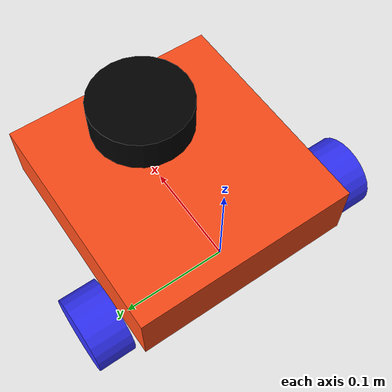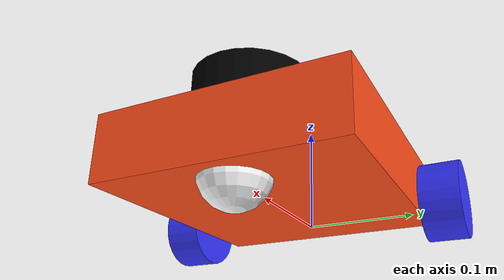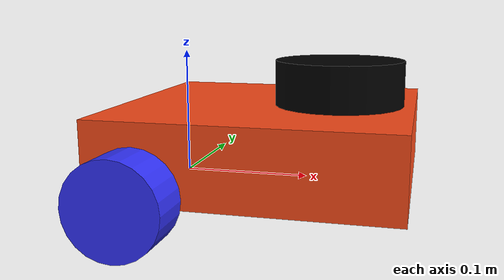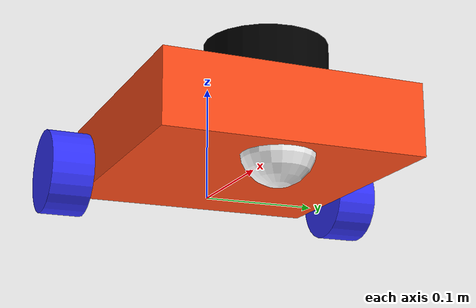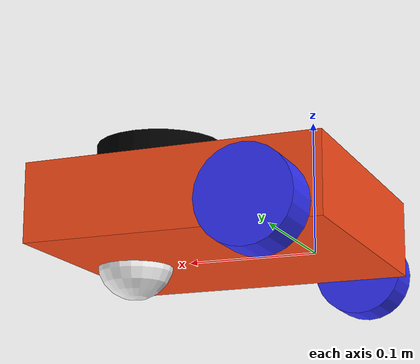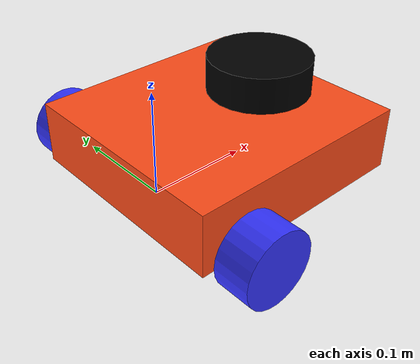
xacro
<?xml version="1.0"?>
<robot xmlns:xacro="http://www.ros.org/wiki/xacro"  name="robot">

    <xacro:include filename="robot_core.xacro" />

    <xacro:include filename="lidar.xacro" />

</robot>

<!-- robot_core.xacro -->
<robot xmlns:xacro="http://www.ros.org/wiki/xacro" >

    <xacro:include filename="inertial_macros.xacro"/>

    <xacro:property name="chassis_length" value="0.225"/>
    <xacro:property name="chassis_width" value="0.215"/>
    <xacro:property name="chassis_height" value="0.06"/>
    <xacro:property name="chassis_mass" value="1.0"/>
    <xacro:property name="wheel_radius" value="0.035"/>
    <xacro:property name="wheel_thickness" value="0.035"/>
    <xacro:property name="wheel_mass" value="0.05"/>
    <xacro:property name="wheel_offset_x" value="0.1"/>
    <xacro:property name="wheel_offset_y" value="0.1485"/>
    <xacro:property name="wheel_offset_z" value="0.01"/>
    <xacro:property name="caster_wheel_radius" value="0.03"/>
    <xacro:property name="caster_wheel_mass" value="0.01"/>
    <xacro:property name="caster_wheel_offset_x" value="0.11"/>
    <xacro:property name="caster_wheel_offset_z" value="${wheel_offset_z - wheel_radius + caster_wheel_radius - 0.015}"/>

    <material name="white">
        <color rgba="1 1 1 1" />
    </material>

    <material name="orange">
        <color rgba="1 0.3 0.1 1"/>
    </material>

    <material name="blue">
        <color rgba="0.2 0.2 1 1"/>
    </material>

    <material name="black">
        <color rgba="0 0 0 1"/>
    </material>

    <material name="red">
        <color rgba="1 0 0 1"/>
    </material>

    <!-- BASE LINK -->

    <link name="base_link">

    </link>

    <!-- BASE_FOOTPRINT LINK -->

    <joint name="base_footprint_joint" type="fixed">
        <parent link="base_link"/>
        <child link="base_footprint"/>
        <origin xyz="0 0 0" rpy="0 0 0"/>
    </joint>

    <link name="base_footprint">
    </link>

    <!-- CHASSIS LINK -->

    <joint name="chassis_joint" type="fixed">
        <parent link="base_link"/>
        <child link="chassis"/>
        <origin xyz="0.036 0 ${(chassis_height/4)}"/>
    </joint>

    <link name="chassis">
        <visual>
            <origin xyz="0.036 0 ${(chassis_height/4)}"/>
            <geometry>
                <box size="${chassis_length} ${chassis_width} ${chassis_height}"/>
            </geometry>
            <material name="orange"/>
        </visual>
        <collision>
            <origin xyz="0.036 0 ${(chassis_height/4)}"/>
            <geometry>
                <box size="${chassis_length} ${chassis_width} ${chassis_height}"/>
            </geometry>
        </collision>
        <xacro:inertial_box mass="0.5" x="${chassis_length}" y="${chassis_width}" z="${chassis_height}">
            <origin xyz="0.036 0 ${(chassis_height/4)}" rpy="0 0 0"/>
        </xacro:inertial_box>
    </link>

    <gazebo reference="chassis">
        <material>Gazebo/Orange</material>
    </gazebo>

    <!-- LEFT WHEEL LINK -->

    <!-- LEFT WHEEL JOINT -->
    <joint name="left_wheel_joint" type="continuous">
        <parent link="chassis"/>
        <child link="left_wheel"/>

        <!-- Position of the wheel relative to chassis -->
        <origin xyz="-0.035 0.13 -0.006" rpy="0 0 0"/>

        <!-- Differential drive wheels rotate around Y -->
        <axis xyz="0 1 0"/>
        <limit effort="10" velocity="10"/>
    </joint>

    <!-- LEFT WHEEL LINK -->
    <link name="left_wheel">

        <!-- VISUAL -->
        <visual>
            <!-- Rotate cylinder so it looks like a wheel -->
            <origin xyz="0 0 0" rpy="${pi/2} 0 0"/>
            <geometry>
                <cylinder radius="${wheel_radius}" length="${wheel_thickness}"/>
            </geometry>
            <material name="blue"/>
        </visual>

        <!-- COLLISION -->
        <collision>
            <origin xyz="0 0 0" rpy="${pi/2} 0 0"/>
            <geometry>
                <cylinder radius="${wheel_radius}" length="${wheel_thickness}"/>
            </geometry>
        </collision>

        <!-- INERTIAL -->
        <xacro:inertial_cylinder
            mass="${wheel_mass}"
            radius="${wheel_radius}"
            length="${wheel_thickness}">
            <origin xyz="0 0 0" rpy="${pi/2} 0 0"/>
        </xacro:inertial_cylinder>

    </link>

    <gazebo reference="left_wheel">
        <material>Gazebo/Blue</material>
    </gazebo>

    <!-- RIGHT WHEEL LINK -->

    <joint name="right_wheel_joint" type="continuous">
        <parent link="chassis"/>
        <child link="right_wheel"/>
        <origin xyz="-0.035 -0.13 -0.006" rpy="0 0 0"/>

        <!-- Differential drive wheels rotate around Y -->
        <axis xyz="0 1 0"/>
        <limit effort="10" velocity="10"/>
    </joint>
    <transmission name="right_wheel_trans">
        <type>transmission_interface/SimpleTransmission</type>
        <joint name="right_wheel_joint">
            <hardwareInterface>hardware_interface/VelocityJointInterface</hardwareInterface>
        </joint>
        <actuator name="right_motor">
            <hardwareInterface>hardware_interface/VelocityJointInterface</hardwareInterface>
            <mechanicalReduction>1</mechanicalReduction>
        </actuator>
    </transmission>

    <link name="right_wheel">

        <!-- VISUAL -->
        <visual>
            <!-- Rotate cylinder so it looks like a wheel -->
            <origin xyz="0 0 0" rpy="${pi/2} 0 0"/>
            <geometry>
                <cylinder radius="${wheel_radius}" length="${wheel_thickness}"/>
            </geometry>
            <material name="blue"/>
        </visual>

        <!-- COLLISION -->
        <collision>
            <origin xyz="0 0 0" rpy="${pi/2} 0 0"/>
            <geometry>
                <cylinder radius="${wheel_radius}" length="${wheel_thickness}"/>
            </geometry>
        </collision>

        <!-- INERTIAL -->
        <xacro:inertial_cylinder
            mass="${wheel_mass}"
            radius="${wheel_radius}"
            length="${wheel_thickness}">
            <origin xyz="0 0 0" rpy="${pi/2} 0 0"/>
        </xacro:inertial_cylinder>

    </link>

    <gazebo reference="right_wheel">
        <material>Gazebo/Blue</material>
    </gazebo>

    <!-- CASTER WHEEL LINK -->

    <joint name="caster_wheel_joint" type="fixed">
        <parent link="chassis"/>
        <child link="caster_wheel"/>
        <origin xyz="${caster_wheel_offset_x} 0 ${caster_wheel_offset_z}"/>
    </joint>

    <link name="caster_wheel">
        <visual>
            <geometry>
                <sphere radius="${caster_wheel_radius}"/>
            </geometry>
            <material name="white"/>
        </visual>
        <collision>
            <geometry>
                <sphere radius="${caster_wheel_radius}"/>
            </geometry>
        </collision>
        <xacro:inertial_sphere mass="${caster_wheel_mass}" radius="${caster_wheel_radius}">
            <origin xyz="0 0 0" rpy="0 0 0"/>
        </xacro:inertial_sphere>
    </link>

    <gazebo reference="caster_wheel">
        <material>Gazebo/White</material>
        <mu1 value="0.001"/>
        <mu2 value="0.001"/>
    </gazebo>

</robot>

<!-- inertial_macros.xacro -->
<robot xmlns:xacro="http://www.ros.org/wiki/xacro" >

    <xacro:macro name="inertial_sphere" params="mass radius *origin">
        <inertial>  <!-- Correct spelling -->
            <xacro:insert_block name="origin"/>
            <mass value="${mass}"/>
            <inertia ixx="${(2/5) * mass * (radius*radius)}" ixy="0.0" ixz="0.0"
                    iyy="${(2/5) * mass * (radius*radius)}" iyz="0.0"
                    izz="${(2/5) * mass * (radius*radius)}"/>
        </inertial>
    </xacro:macro>

    <xacro:macro name="inertial_box" params="mass x y z *origin">
        <inertial>
            <xacro:insert_block name="origin"/>
            <mass value="${mass}" />
            <inertia ixx="${(1/12) * mass * (y*y+z*z)}" ixy="0.0" ixz="0.0"
                    iyy="${(1/12) * mass * (x*x+z*z)}" iyz="0.0"
                    izz="${(1/12) * mass * (x*x+y*y)}" />
        </inertial>
    </xacro:macro>

    <xacro:macro name="inertial_cylinder" params="mass length radius *origin">
        <inertial>
            <xacro:insert_block name="origin"/>
            <mass value="${mass}" />
            <inertia ixx="${(1/12) * mass * (3*radius*radius + length*length)}" ixy="0.0" ixz="0.0"
                    iyy="${(1/12) * mass * (3*radius*radius + length*length)}" iyz="0.0"
                    izz="${(1/2) * mass * (radius*radius)}" />
        </inertial>
    </xacro:macro>

</robot>

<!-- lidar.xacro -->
<robot xmlns:xacro="http://www.ros.org/wiki/xacro" >

    <joint name="laser_joint" type="fixed">
        <parent link="chassis"/>
        <child link="laser_frame"/>
        <origin xyz="0.09 0 0.06" rpy="0 0 0"/>
    </joint>

    <link name="laser_frame">
        <visual>
            <geometry>
                <cylinder radius="0.05" length="0.04"/>
            </geometry>
            <material name="black"/>
        </visual>
        <collision>
            <geometry>
                <cylinder radius="0.05" length="0.04"/>
            </geometry>
        </collision>
        <xacro:inertial_cylinder mass="0.1" length="0.04" radius="0.05">
            <origin xyz="0.09 0 0.06" rpy="0 0 0"/>
        </xacro:inertial_cylinder>
    </link>

    <gazebo reference="laser_frame">
        <material>Gazebo/Black</material>

        <sensor name="laser" type="ray">
            <pose> 0 0 0 0 0 0 </pose>
            <visualize>true</visualize>
            <update_rate>10</update_rate>
            <ray>
                <scan>
                    <horizontal>
                        <samples>360</samples>
                        <min_angle>-3.14</min_angle>
                        <max_angle>3.14</max_angle>
                    </horizontal>
                </scan>
                <range>
                    <min>0.3</min>
                    <max>12</max>
                </range>
            </ray>
            <plugin name="laser_controller" filename="libgazebo_ros_ray_sensor.so">
                <ros>
                    <argument>~/out:=scan</argument>
                </ros>
                <output_type>sensor_msgs/LaserScan</output_type>
                <frame_name>laser_frame</frame_name>
            </plugin>
        </sensor>
    </gazebo>

</robot>
